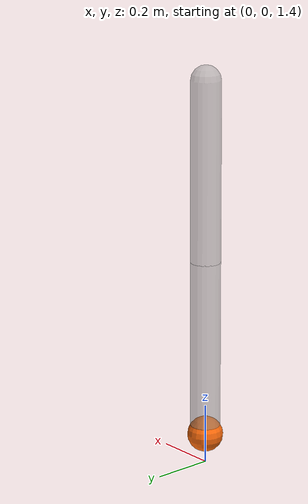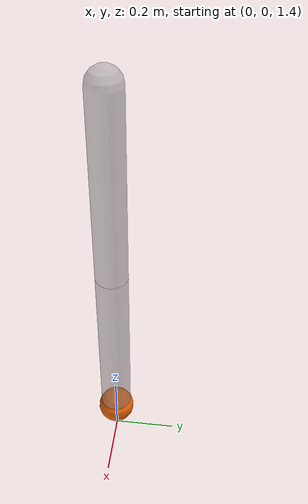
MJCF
<mujoco model="acrobot">
     <!-- Simulation settings, NOTE: these parameters make a difference in RL stability. Acrobot is chaotic-->
    <option solver="Newton" timestep="0.01" iterations="10" ls_iterations="10"/>

    <!-- Inertia is computed from geometry -->
    <compiler inertiafromgeom="true" />

    <!-- Default properties -->
    <default>
        <joint armature="0.0" damping="0.75" limited="true"/>
        <geom contype="0" friction="1.0 0.1 0.1" />
    </default>

    <!-- Memory settings (default is 1000) -->
    <size nstack="3000" />

    <worldbody>

        <!-- Origin -->
        <geom name="ball" pos="0 0 1.5" type="sphere" size="0.06" rgba="1.0 0.424 0.047 1"/>

        <!-- Link 1 -->
        <body name="link1" pos="0 0 1.5">
            <geom name="link1" fromto="0 0 0 0 0 0.6" size="0.05 0.3" type="capsule" rgba="0.6 0.6 0.6 0.5"/>
            <joint axis="0 -1 0" name="wrist" pos="0 0 0" range="-inf inf" type="hinge" />

            <!-- Link 2 -->
            <body name="link2" pos="0 0 0.6">
                <geom name="link2" fromto="0 0 0 0 0 0.6" size="0.05 0.3" type="capsule" rgba="0.6 0.6 0.6 0.5"/>
                <joint axis="0 -1 0" name="waist" pos="0 0 0" range="-inf inf" type="hinge" />
            </body>

        </body>

    </worldbody>

    <!-- Actuator -->
    <actuator>
        <motor name="waist" joint="waist" ctrllimited="true" ctrlrange="-1 1" gear="25"/>
    </actuator>

    <!-- default configuration (when you press "Load key" button) -->
    <keyframe>
        <key name="default" qpos="3.14 0" qvel="0 0" />
    </keyframe>

    <!-- Specify the light settings -->
    <asset>
        <texture type="skybox" builtin="flat" rgb1="0 0 0" rgb2="0 0 0" width="512" height="3072"/>
        <texture type="2d" name="groundplane" builtin="checker" mark="edge" rgb1="0.2 0.3 0.4" rgb2="0.1 0.2 0.3" markrgb="0.9 0.9 0.9" width="300" height="300"/>
        <material name="groundplane" texture="groundplane" texuniform="true" texrepeat="5 5" reflectance="0.2"/>
    </asset>

    <worldbody>
        <!-- Add light -->
        <light pos="1.0 0.5 0.0" dir="0 0 -1" directional="true"/>

        <!-- Add the Floor -->
        <geom name="floor" size="0 0 0.05" type="plane" material="groundplane"/>
    </worldbody>

</mujoco>
